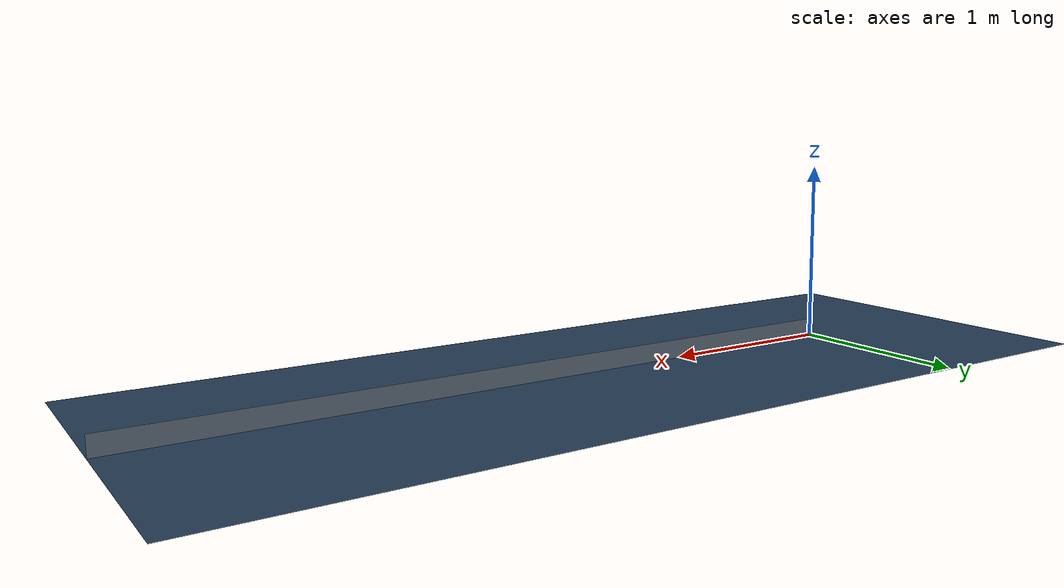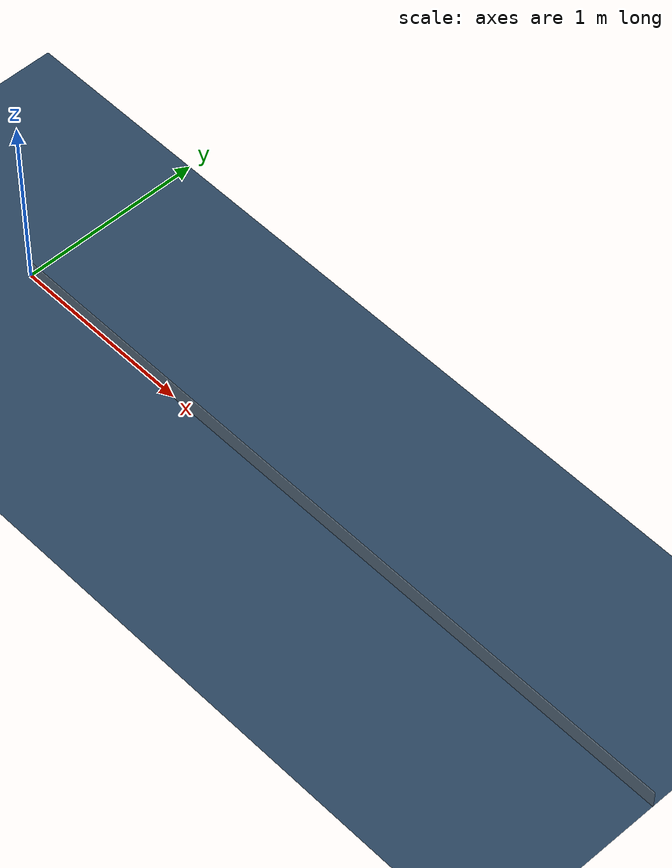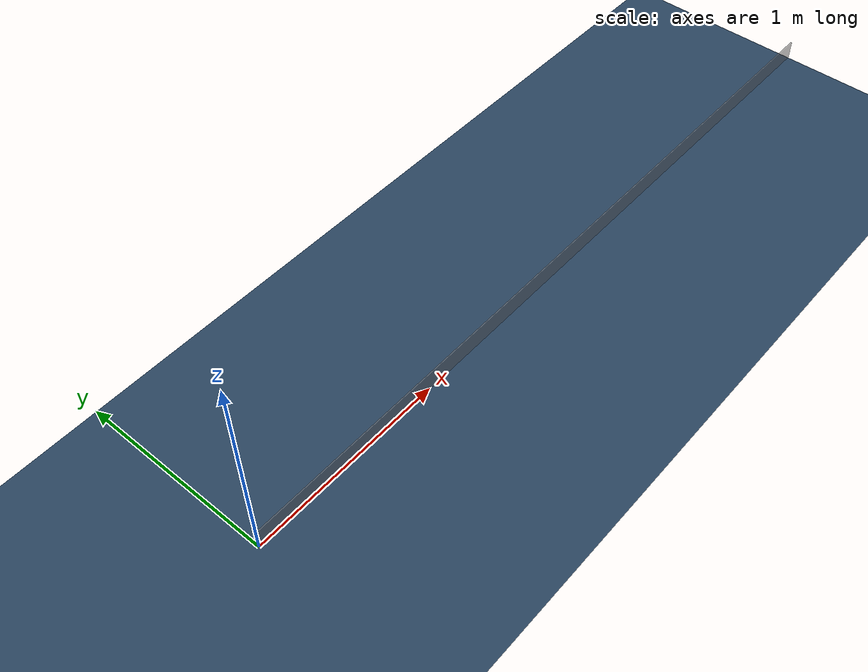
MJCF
<mujoco model="LQR">
  <include file="./common/skybox.xml"/>
  <include file="./common/visual.xml"/>
  <include file="./common/materials.xml"/>

  <option timestep=".03"/>

  <default>
    <joint type="slide" axis="0 1 0"/>
    <geom type="sphere" size=".1" material="self"/>
    <site size=".01"/>
    <tendon width=".02" material="self"/>
  </default>

  <option>
    <flag constraint="disable"/>
  </option>

  <worldbody>
    <light name="light" pos="0 0 2"/>
    <camera name="cam0" pos="-1.428 -0.311 0.856" xyaxes="0.099 -0.995 0.000 0.350 0.035 0.936"/>
    <camera name="cam1" pos="1.787 2.452 4.331" xyaxes="-1 0 0 0 -0.868 0.497"/>
    <geom name="floor" size="4 1 .2" type="plane" material="grid"/>
    <geom name="origin" pos="2 0 .05" size="2 .003 .05" type="box" rgba=".5 .5 .5 .5"/>
  </worldbody>
</mujoco>

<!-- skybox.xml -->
<mujoco>
  <asset>
      <texture name="skybox" type="skybox" builtin="gradient" rgb1=".4 .6 .8" rgb2="0 0 0"
               width="800" height="800" mark="random" markrgb="1 1 1"/>
  </asset>
</mujoco>

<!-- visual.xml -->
<mujoco>
  <visual>
    <headlight ambient=".4 .4 .4" diffuse=".8 .8 .8" specular="0.1 0.1 0.1"/>
    <map znear=".01"/>
    <quality shadowsize="2048"/>
  </visual>
</mujoco>

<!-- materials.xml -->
<!--
Common textures, colors and materials to be used throughout this suite. Some
materials such as xxx_highlight are activated on occurence of certain events,
for example receiving a positive reward.
-->
<mujoco>
  <asset>
    <texture name="grid" type="2d" builtin="checker" rgb1=".1 .2 .3" rgb2=".2 .3 .4" width="300" height="300" mark="edge" markrgb=".2 .3 .4"/>
    <material name="grid" texture="grid" texrepeat="1 1" texuniform="true" reflectance=".2"/>
    <material name="self" rgba=".7 .5 .3 1"/>
    <material name="self_default" rgba=".7 .5 .3 1"/>
    <material name="self_highlight" rgba="0 .5 .3 1"/>
    <material name="effector" rgba=".7 .4 .2 1"/>
    <material name="effector_default" rgba=".7 .4 .2 1"/>
    <material name="effector_highlight" rgba="0 .5 .3 1"/>
    <material name="decoration" rgba=".3 .5 .7 1"/>
    <material name="eye" rgba="0 .2 1 1"/>
    <material name="target" rgba=".6 .3 .3 1"/>
    <material name="target_default" rgba=".6 .3 .3 1"/>
    <material name="target_highlight" rgba=".6 .3 .3 .4"/>
  </asset>
</mujoco>
